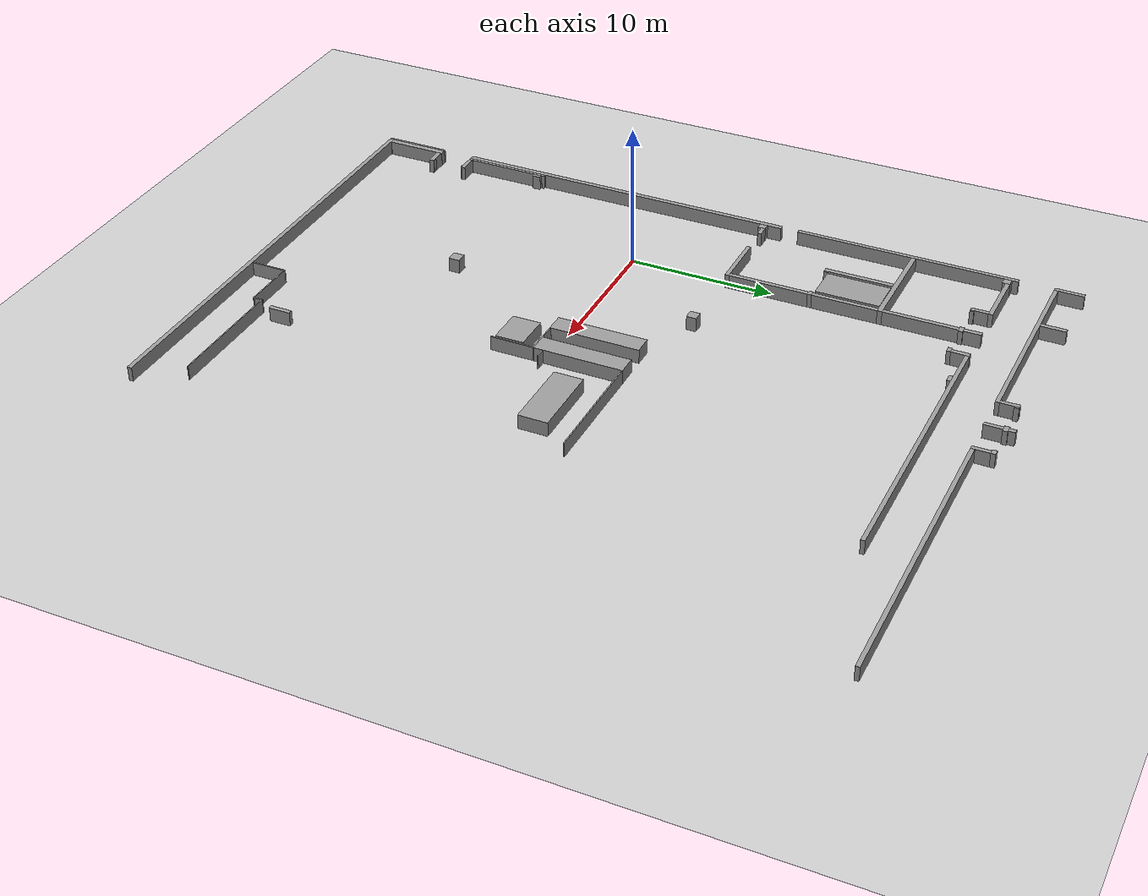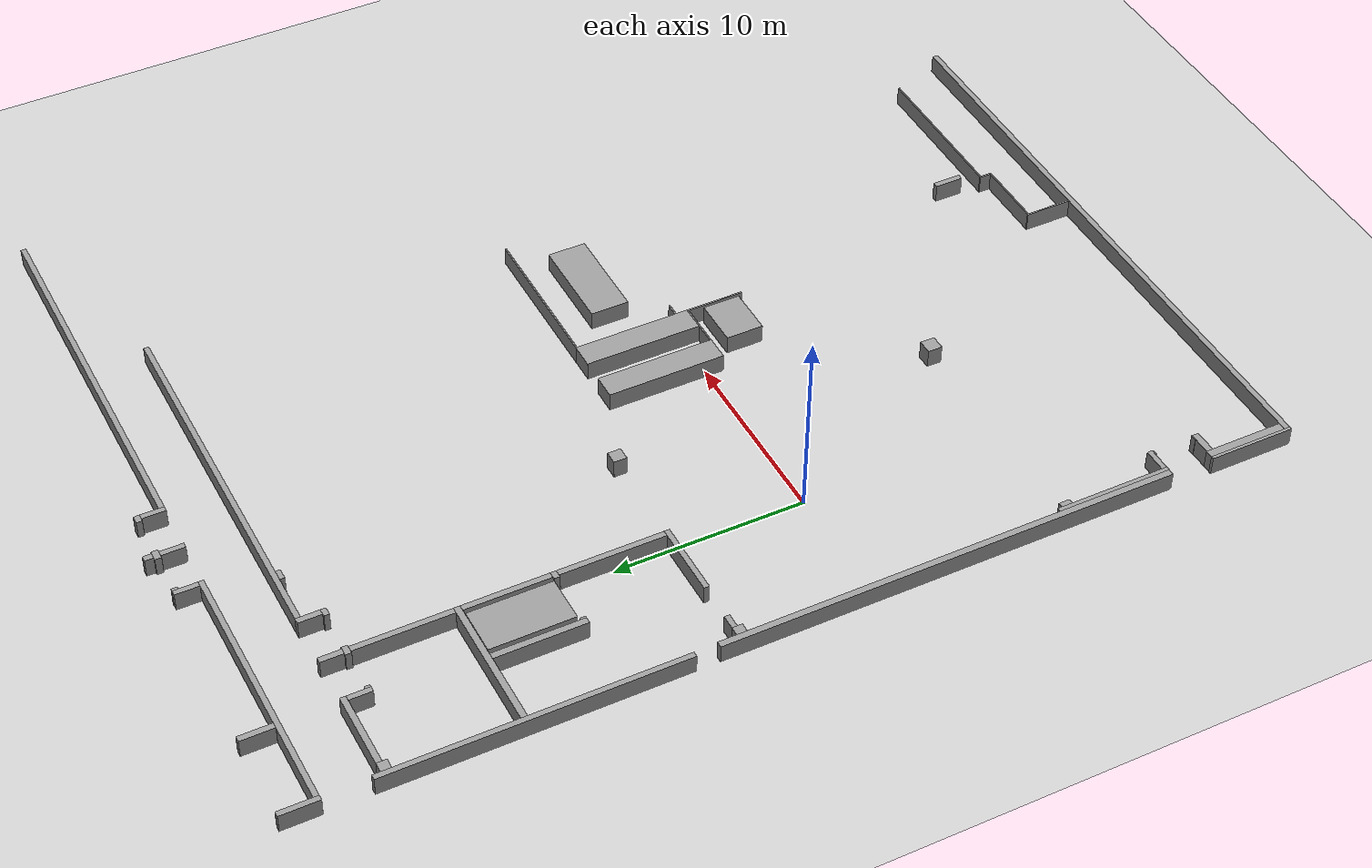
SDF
<sdf version="1.4">
 <world name="default">
  <model name="ground_plane">
   <static>1</static>
   <link name="link">
    <collision name="collision">
     <geometry><plane><normal>0 0 1</normal><size>100 100</size></plane></geometry>
     <surface><friction><ode><mu>100</mu><mu2>50</mu2></ode></friction></surface>
    </collision>
    <visual name="visual">
     <cast_shadows>0</cast_shadows>
     <geometry><plane><normal>0 0 1</normal><size>100 100</size></plane></geometry>
     <material>
      <script><uri>file://media/materials/scripts/gazebo.material</uri><name>Gazebo/Grey</name></script>
     </material>
    </visual>
    <velocity_decay><linear>0</linear><angular>0</angular></velocity_decay>
   </link>
  </model>
  <model name="walls">
   <static>1</static>
   <link name="Wall_0">
    <collision name="Wall_0_Collision">
     <geometry><box><size>4.51915 0.15319 1</size></box></geometry>
     <pose>2.28511 -0.0766 0.5 0 -0 0</pose>
    </collision>
    <visual name="Wall_0_Visual">
     <geometry><box><size>4.51915 0.15319 1</size></box></geometry>
     <material>
      <script><uri>file://media/materials/scripts/gazebo.material</uri><name>Gazebo/Grey</name></script>
     </material>
     <pose>2.28511 -0.0766 0.5 0 -0 0</pose>
    </visual>
    <velocity_decay><linear>0</linear><angular>0</angular></velocity_decay>
   </link>
   <link name="Wall_1">
    <collision name="Wall_1_Collision">
     <geometry><box><size>24.0766 0.33191 1</size></box></geometry>
     <pose>18.8553 -0.16596 0.5 0 -0 0</pose>
    </collision>
    <visual name="Wall_1_Visual">
     <geometry><box><size>24.0766 0.33191 1</size></box></geometry>
     <material>
      <script><uri>file://media/materials/scripts/gazebo.material</uri><name>Gazebo/Grey</name></script>
     </material>
     <pose>18.8553 -0.16596 0.5 0 -0 0</pose>
    </visual>
    <velocity_decay><linear>0</linear><angular>0</angular></velocity_decay>
   </link>
   <link name="Wall_2">
    <collision name="Wall_2_Collision">
     <geometry><box><size>15.4979 0.28085 1</size></box></geometry>
     <pose>39.8426 -0.14043 0.5 0 -0 0</pose>
    </collision>
    <visual name="Wall_2_Visual">
     <geometry><box><size>15.4979 0.28085 1</size></box></geometry>
     <material>
      <script><uri>file://media/materials/scripts/gazebo.material</uri><name>Gazebo/Grey</name></script>
     </material>
     <pose>39.8426 -0.14043 0.5 0 -0 0</pose>
    </visual>
    <velocity_decay><linear>0</linear><angular>0</angular></velocity_decay>
   </link>
   <link name="Wall_3">
    <collision name="Wall_3_Collision">
     <geometry><box><size>2.01702 0.28085 1</size></box></geometry>
     <pose>51 -0.14043 0.5 0 -0 0</pose>
    </collision>
    <visual name="Wall_3_Visual">
     <geometry><box><size>2.01702 0.28085 1</size></box></geometry>
     <material>
      <script><uri>file://media/materials/scripts/gazebo.material</uri><name>Gazebo/Grey</name></script>
     </material>
     <pose>51 -0.14043 0.5 0 -0 0</pose>
    </visual>
    <velocity_decay><linear>0</linear><angular>0</angular></velocity_decay>
   </link>
   <link name="Wall_4">
    <collision name="Wall_4_Collision">
     <geometry><box><size>0.30638 32.7319 1</size></box></geometry>
     <pose>0.17872 -16.5191 0.5 0 -0 0</pose>
    </collision>
    <visual name="Wall_4_Visual">
     <geometry><box><size>0.30638 32.7319 1</size></box></geometry>
     <material>
      <script><uri>file://media/materials/scripts/gazebo.material</uri><name>Gazebo/Grey</name></script>
     </material>
     <pose>0.17872 -16.5191 0.5 0 -0 0</pose>
    </visual>
    <velocity_decay><linear>0</linear><angular>0</angular></velocity_decay>
   </link>
   <link name="Wall_5">
    <collision name="Wall_5_Collision">
     <geometry><box><size>4.18723 0.40851 1</size></box></geometry>
     <pose>2.45106 -0.35745 0.5 0 -0 0</pose>
    </collision>
    <visual name="Wall_5_Visual">
     <geometry><box><size>4.18723 0.40851 1</size></box></geometry>
     <material>
      <script><uri>file://media/materials/scripts/gazebo.material</uri><name>Gazebo/Grey</name></script>
     </material>
     <pose>2.45106 -0.35745 0.5 0 -0 0</pose>
    </visual>
    <velocity_decay><linear>0</linear><angular>0</angular></velocity_decay>
   </link>
   <link name="Wall_6">
    <collision name="Wall_6_Collision">
     <geometry><box><size>0.02553 0.30638 1</size></box></geometry>
     <pose>0.34468 -0.40851 0.5 0 -0 0</pose>
    </collision>
    <visual name="Wall_6_Visual">
     <geometry><box><size>0.02553 0.30638 1</size></box></geometry>
     <material>
      <script><uri>file://media/materials/scripts/gazebo.material</uri><name>Gazebo/Grey</name></script>
     </material>
     <pose>0.34468 -0.40851 0.5 0 -0 0</pose>
    </visual>
    <velocity_decay><linear>0</linear><angular>0</angular></velocity_decay>
   </link>
   <link name="Wall_7">
    <collision name="Wall_7_Collision">
     <geometry><box><size>0.33191 7.17447 1</size></box></geometry>
     <pose>40.4043 -3.86809 0.5 0 -0 0</pose>
    </collision>
    <visual name="Wall_7_Visual">
     <geometry><box><size>0.33191 7.17447 1</size></box></geometry>
     <material>
      <script><uri>file://media/materials/scripts/gazebo.material</uri><name>Gazebo/Grey</name></script>
     </material>
     <pose>40.4043 -3.86809 0.5 0 -0 0</pose>
    </visual>
    <velocity_decay><linear>0</linear><angular>0</angular></velocity_decay>
   </link>
   <link name="Wall_8">
    <collision name="Wall_8_Collision">
     <geometry><box><size>0.53617 0.51064 1</size></box></geometry>
     <pose>46.9149 -0.53617 0.5 0 -0 0</pose>
    </collision>
    <visual name="Wall_8_Visual">
     <geometry><box><size>0.53617 0.51064 1</size></box></geometry>
     <material>
      <script><uri>file://media/materials/scripts/gazebo.material</uri><name>Gazebo/Grey</name></script>
     </material>
     <pose>46.9149 -0.53617 0.5 0 -0 0</pose>
    </visual>
    <velocity_decay><linear>0</linear><angular>0</angular></velocity_decay>
   </link>
   <link name="Wall_9">
    <collision name="Wall_9_Collision">
     <geometry><box><size>0.28085 13.8383 1</size></box></geometry>
     <pose>50.1319 -7.2 0.5 0 -0 0</pose>
    </collision>
    <visual name="Wall_9_Visual">
     <geometry><box><size>0.28085 13.8383 1</size></box></geometry>
     <material>
      <script><uri>file://media/materials/scripts/gazebo.material</uri><name>Gazebo/Grey</name></script>
     </material>
     <pose>50.1319 -7.2 0.5 0 -0 0</pose>
    </visual>
    <velocity_decay><linear>0</linear><angular>0</angular></velocity_decay>
   </link>
   <link name="Wall_10">
    <collision name="Wall_10_Collision">
     <geometry><box><size>6.0766 0.20426 1</size></box></geometry>
     <pose>9.85532 -0.43404 0.5 0 -0 0</pose>
    </collision>
    <visual name="Wall_10_Visual">
     <geometry><box><size>6.0766 0.20426 1</size></box></geometry>
     <material>
      <script><uri>file://media/materials/scripts/gazebo.material</uri><name>Gazebo/Grey</name></script>
     </material>
     <pose>9.85532 -0.43404 0.5 0 -0 0</pose>
    </visual>
    <velocity_decay><linear>0</linear><angular>0</angular></velocity_decay>
   </link>
   <link name="Wall_11">
    <collision name="Wall_11_Collision">
     <geometry><box><size>0.53617 0.45957 1</size></box></geometry>
     <pose>29.6553 -0.5617 0.5 0 -0 0</pose>
    </collision>
    <visual name="Wall_11_Visual">
     <geometry><box><size>0.53617 0.45957 1</size></box></geometry>
     <material>
      <script><uri>file://media/materials/scripts/gazebo.material</uri><name>Gazebo/Grey</name></script>
     </material>
     <pose>29.6553 -0.5617 0.5 0 -0 0</pose>
    </visual>
    <velocity_decay><linear>0</linear><angular>0</angular></velocity_decay>
   </link>
   <link name="Wall_12">
    <collision name="Wall_12_Collision">
     <geometry><box><size>0.28085 1.22553 1</size></box></geometry>
     <pose>6.95745 -1.14894 0.5 0 -0 0</pose>
    </collision>
    <visual name="Wall_12_Visual">
     <geometry><box><size>0.28085 1.22553 1</size></box></geometry>
     <material>
      <script><uri>file://media/materials/scripts/gazebo.material</uri><name>Gazebo/Grey</name></script>
     </material>
     <pose>6.95745 -1.14894 0.5 0 -0 0</pose>
    </visual>
    <velocity_decay><linear>0</linear><angular>0</angular></velocity_decay>
   </link>
   <link name="Wall_13">
    <collision name="Wall_13_Collision">
     <geometry><box><size>0.58723 0.25532 1</size></box></geometry>
     <pose>12.3702 -0.66383 0.5 0 -0 0</pose>
    </collision>
    <visual name="Wall_13_Visual">
     <geometry><box><size>0.58723 0.25532 1</size></box></geometry>
     <material>
      <script><uri>file://media/materials/scripts/gazebo.material</uri><name>Gazebo/Grey</name></script>
     </material>
     <pose>12.3702 -0.66383 0.5 0 -0 0</pose>
    </visual>
    <velocity_decay><linear>0</linear><angular>0</angular></velocity_decay>
   </link>
   <link name="Wall_14">
    <collision name="Wall_14_Collision">
     <geometry><box><size>0.35745 1.2 1</size></box></geometry>
     <pose>4.36596 -1.1617 0.5 0 -0 0</pose>
    </collision>
    <visual name="Wall_14_Visual">
     <geometry><box><size>0.35745 1.2 1</size></box></geometry>
     <material>
      <script><uri>file://media/materials/scripts/gazebo.material</uri><name>Gazebo/Grey</name></script>
     </material>
     <pose>4.36596 -1.1617 0.5 0 -0 0</pose>
    </visual>
    <velocity_decay><linear>0</linear><angular>0</angular></velocity_decay>
   </link>
   <link name="Wall_15">
    <collision name="Wall_15_Collision">
     <geometry><box><size>0.28085 0.74043 1</size></box></geometry>
     <pose>29.783 -1.1617 0.5 0 -0 0</pose>
    </collision>
    <visual name="Wall_15_Visual">
     <geometry><box><size>0.28085 0.74043 1</size></box></geometry>
     <material>
      <script><uri>file://media/materials/scripts/gazebo.material</uri><name>Gazebo/Grey</name></script>
     </material>
     <pose>29.783 -1.1617 0.5 0 -0 0</pose>
    </visual>
    <velocity_decay><linear>0</linear><angular>0</angular></velocity_decay>
   </link>
   <link name="Wall_16">
    <collision name="Wall_16_Collision">
     <geometry><box><size>0.30638 4.05957 1</size></box></geometry>
     <pose>47.0298 -2.82128 0.5 0 -0 0</pose>
    </collision>
    <visual name="Wall_16_Visual">
     <geometry><box><size>0.30638 4.05957 1</size></box></geometry>
     <material>
      <script><uri>file://media/materials/scripts/gazebo.material</uri><name>Gazebo/Grey</name></script>
     </material>
     <pose>47.0298 -2.82128 0.5 0 -0 0</pose>
    </visual>
    <velocity_decay><linear>0</linear><angular>0</angular></velocity_decay>
   </link>
   <link name="Wall_17">
    <collision name="Wall_17_Collision">
     <geometry><box><size>0.02553 0.30638 1</size></box></geometry>
     <pose>4.55745 -1.60851 0.5 0 -0 0</pose>
    </collision>
    <visual name="Wall_17_Visual">
     <geometry><box><size>0.02553 0.30638 1</size></box></geometry>
     <material>
      <script><uri>file://media/materials/scripts/gazebo.material</uri><name>Gazebo/Grey</name></script>
     </material>
     <pose>4.55745 -1.60851 0.5 0 -0 0</pose>
    </visual>
    <velocity_decay><linear>0</linear><angular>0</angular></velocity_decay>
   </link>
   <link name="Wall_18">
    <collision name="Wall_18_Collision">
     <geometry><box><size>0.05106 0.28085 1</size></box></geometry>
     <pose>6.79149 -1.62128 0.5 0 -0 0</pose>
    </collision>
    <visual name="Wall_18_Visual">
     <geometry><box><size>0.05106 0.28085 1</size></box></geometry>
     <material>
      <script><uri>file://media/materials/scripts/gazebo.material</uri><name>Gazebo/Grey</name></script>
     </material>
     <pose>6.79149 -1.62128 0.5 0 -0 0</pose>
    </visual>
    <velocity_decay><linear>0</linear><angular>0</angular></velocity_decay>
   </link>
   <link name="Wall_19">
    <collision name="Wall_19_Collision">
     <geometry><box><size>0.28085 3.98298 1</size></box></geometry>
     <pose>29.783 -5.46383 0.5 0 -0 0</pose>
    </collision>
    <visual name="Wall_19_Visual">
     <geometry><box><size>0.28085 3.98298 1</size></box></geometry>
     <material>
      <script><uri>file://media/materials/scripts/gazebo.material</uri><name>Gazebo/Grey</name></script>
     </material>
     <pose>29.783 -5.46383 0.5 0 -0 0</pose>
    </visual>
    <velocity_decay><linear>0</linear><angular>0</angular></velocity_decay>
   </link>
   <link name="Wall_20">
    <collision name="Wall_20_Collision">
     <geometry><box><size>4.77447 0.33191 1</size></box></geometry>
     <pose>37.8511 -4.09787 0.5 0 -0 0</pose>
    </collision>
    <visual name="Wall_20_Visual">
     <geometry><box><size>4.77447 0.33191 1</size></box></geometry>
     <material>
      <script><uri>file://media/materials/scripts/gazebo.material</uri><name>Gazebo/Grey</name></script>
     </material>
     <pose>37.8511 -4.09787 0.5 0 -0 0</pose>
    </visual>
    <velocity_decay><linear>0</linear><angular>0</angular></velocity_decay>
   </link>
   <link name="Wall_21">
    <collision name="Wall_21_Collision">
     <geometry><box><size>0.28085 0.10213 1</size></box></geometry>
     <pose>35.6043 -4.31489 0.5 0 -0 0</pose>
    </collision>
    <visual name="Wall_21_Visual">
     <geometry><box><size>0.28085 0.10213 1</size></box></geometry>
     <material>
      <script><uri>file://media/materials/scripts/gazebo.material</uri><name>Gazebo/Grey</name></script>
     </material>
     <pose>35.6043 -4.31489 0.5 0 -0 0</pose>
    </visual>
    <velocity_decay><linear>0</linear><angular>0</angular></velocity_decay>
   </link>
   <link name="Wall_22">
    <collision name="Wall_22_Collision">
     <geometry><box><size>4.41702 2.42553 1</size></box></geometry>
     <pose>38.0043 -5.70638 0.5 0 -0 0</pose>
    </collision>
    <visual name="Wall_22_Visual">
     <geometry><box><size>4.41702 2.42553 1</size></box></geometry>
     <material>
      <script><uri>file://media/materials/scripts/gazebo.material</uri><name>Gazebo/Grey</name></script>
     </material>
     <pose>38.0043 -5.70638 0.5 0 -0 0</pose>
    </visual>
    <velocity_decay><linear>0</linear><angular>0</angular></velocity_decay>
   </link>
   <link name="Wall_23">
    <collision name="Wall_23_Collision">
     <geometry><box><size>1.73617 0.30638 1</size></box></geometry>
     <pose>51.1404 -4.69787 0.5 0 -0 0</pose>
    </collision>
    <visual name="Wall_23_Visual">
     <geometry><box><size>1.73617 0.30638 1</size></box></geometry>
     <material>
      <script><uri>file://media/materials/scripts/gazebo.material</uri><name>Gazebo/Grey</name></script>
     </material>
     <pose>51.1404 -4.69787 0.5 0 -0 0</pose>
    </visual>
    <velocity_decay><linear>0</linear><angular>0</angular></velocity_decay>
   </link>
   <link name="Wall_24">
    <collision name="Wall_24_Collision">
     <geometry><box><size>1.2 0.28085 1</size></box></geometry>
     <pose>46.2766 -4.71064 0.5 0 -0 0</pose>
    </collision>
    <visual name="Wall_24_Visual">
     <geometry><box><size>1.2 0.28085 1</size></box></geometry>
     <material>
      <script><uri>file://media/materials/scripts/gazebo.material</uri><name>Gazebo/Grey</name></script>
     </material>
     <pose>46.2766 -4.71064 0.5 0 -0 0</pose>
    </visual>
    <velocity_decay><linear>0</linear><angular>0</angular></velocity_decay>
   </link>
   <link name="Wall_25">
    <collision name="Wall_25_Collision">
     <geometry><box><size>0.28085 0.12766 1</size></box></geometry>
     <pose>45.817 -4.91489 0.5 0 -0 0</pose>
    </collision>
    <visual name="Wall_25_Visual">
     <geometry><box><size>0.28085 0.12766 1</size></box></geometry>
     <material>
      <script><uri>file://media/materials/scripts/gazebo.material</uri><name>Gazebo/Grey</name></script>
     </material>
     <pose>45.817 -4.91489 0.5 0 -0 0</pose>
    </visual>
    <velocity_decay><linear>0</linear><angular>0</angular></velocity_decay>
   </link>
   <link name="Wall_26">
    <collision name="Wall_26_Collision">
     <geometry><box><size>0.30638 0.40851 1</size></box></geometry>
     <pose>35.5915 -7.25106 0.5 0 -0 0</pose>
    </collision>
    <visual name="Wall_26_Visual">
     <geometry><box><size>0.30638 0.40851 1</size></box></geometry>
     <material>
      <script><uri>file://media/materials/scripts/gazebo.material</uri><name>Gazebo/Grey</name></script>
     </material>
     <pose>35.5915 -7.25106 0.5 0 -0 0</pose>
    </visual>
    <velocity_decay><linear>0</linear><angular>0</angular></velocity_decay>
   </link>
   <link name="Wall_27">
    <collision name="Wall_27_Collision">
     <geometry><box><size>0.30638 0.51064 1</size></box></geometry>
     <pose>45.8298 -7.30213 0.5 0 -0 0</pose>
    </collision>
    <visual name="Wall_27_Visual">
     <geometry><box><size>0.30638 0.51064 1</size></box></geometry>
     <material>
      <script><uri>file://media/materials/scripts/gazebo.material</uri><name>Gazebo/Grey</name></script>
     </material>
     <pose>45.8298 -7.30213 0.5 0 -0 0</pose>
    </visual>
    <velocity_decay><linear>0</linear><angular>0</angular></velocity_decay>
   </link>
   <link name="Wall_28">
    <collision name="Wall_28_Collision">
     <geometry><box><size>5.51489 0.30638 1</size></box></geometry>
     <pose>32.6808 -7.30213 0.5 0 -0 0</pose>
    </collision>
    <visual name="Wall_28_Visual">
     <geometry><box><size>5.51489 0.30638 1</size></box></geometry>
     <material>
      <script><uri>file://media/materials/scripts/gazebo.material</uri><name>Gazebo/Grey</name></script>
     </material>
     <pose>32.6808 -7.30213 0.5 0 -0 0</pose>
    </visual>
    <velocity_decay><linear>0</linear><angular>0</angular></velocity_decay>
   </link>
   <link name="Wall_29">
    <collision name="Wall_29_Collision">
     <geometry><box><size>4.49362 0.30638 1</size></box></geometry>
     <pose>37.9915 -7.30213 0.5 0 -0 0</pose>
    </collision>
    <visual name="Wall_29_Visual">
     <geometry><box><size>4.49362 0.30638 1</size></box></geometry>
     <material>
      <script><uri>file://media/materials/scripts/gazebo.material</uri><name>Gazebo/Grey</name></script>
     </material>
     <pose>37.9915 -7.30213 0.5 0 -0 0</pose>
    </visual>
    <velocity_decay><linear>0</linear><angular>0</angular></velocity_decay>
   </link>
   <link name="Wall_30">
    <collision name="Wall_30_Collision">
     <geometry><box><size>5.10638 0.30638 1</size></box></geometry>
     <pose>43.1234 -7.30213 0.5 0 -0 0</pose>
    </collision>
    <visual name="Wall_30_Visual">
     <geometry><box><size>5.10638 0.30638 1</size></box></geometry>
     <material>
      <script><uri>file://media/materials/scripts/gazebo.material</uri><name>Gazebo/Grey</name></script>
     </material>
     <pose>43.1234 -7.30213 0.5 0 -0 0</pose>
    </visual>
    <velocity_decay><linear>0</linear><angular>0</angular></velocity_decay>
   </link>
   <link name="Wall_31">
    <collision name="Wall_31_Collision">
     <geometry><box><size>1.2 0.30638 1</size></box></geometry>
     <pose>46.583 -7.30213 0.5 0 -0 0</pose>
    </collision>
    <visual name="Wall_31_Visual">
     <geometry><box><size>1.2 0.30638 1</size></box></geometry>
     <material>
      <script><uri>file://media/materials/scripts/gazebo.material</uri><name>Gazebo/Grey</name></script>
     </material>
     <pose>46.583 -7.30213 0.5 0 -0 0</pose>
    </visual>
    <velocity_decay><linear>0</linear><angular>0</angular></velocity_decay>
   </link>
   <link name="Wall_32">
    <collision name="Wall_32_Collision">
     <geometry><box><size>0.28085 0.43404 1</size></box></geometry>
     <pose>45.817 -9.84255 0.5 0 -0 0</pose>
    </collision>
    <visual name="Wall_32_Visual">
     <geometry><box><size>0.28085 0.43404 1</size></box></geometry>
     <material>
      <script><uri>file://media/materials/scripts/gazebo.material</uri><name>Gazebo/Grey</name></script>
     </material>
     <pose>45.817 -9.84255 0.5 0 -0 0</pose>
    </visual>
    <velocity_decay><linear>0</linear><angular>0</angular></velocity_decay>
   </link>
   <link name="Wall_33">
    <collision name="Wall_33_Collision">
     <geometry><box><size>1.22553 0.30638 1</size></box></geometry>
     <pose>46.5702 -9.90638 0.5 0 -0 0</pose>
    </collision>
    <visual name="Wall_33_Visual">
     <geometry><box><size>1.22553 0.30638 1</size></box></geometry>
     <material>
      <script><uri>file://media/materials/scripts/gazebo.material</uri><name>Gazebo/Grey</name></script>
     </material>
     <pose>46.5702 -9.90638 0.5 0 -0 0</pose>
    </visual>
    <velocity_decay><linear>0</linear><angular>0</angular></velocity_decay>
   </link>
   <link name="Wall_34">
    <collision name="Wall_34_Collision">
     <geometry><box><size>0.28085 19.9404 1</size></box></geometry>
     <pose>47.0425 -20.0298 0.5 0 -0 0</pose>
    </collision>
    <visual name="Wall_34_Visual">
     <geometry><box><size>0.28085 19.9404 1</size></box></geometry>
     <material>
      <script><uri>file://media/materials/scripts/gazebo.material</uri><name>Gazebo/Grey</name></script>
     </material>
     <pose>47.0425 -20.0298 0.5 0 -0 0</pose>
    </visual>
    <velocity_decay><linear>0</linear><angular>0</angular></velocity_decay>
   </link>
   <link name="Wall_35">
    <collision name="Wall_35_Collision">
     <geometry><box><size>0.76596 0.76596 1</size></box></geometry>
     <pose>12.383 -12.8425 0.5 0 -0 0</pose>
    </collision>
    <visual name="Wall_35_Visual">
     <geometry><box><size>0.76596 0.76596 1</size></box></geometry>
     <material>
      <script><uri>file://media/materials/scripts/gazebo.material</uri><name>Gazebo/Grey</name></script>
     </material>
     <pose>12.383 -12.8425 0.5 0 -0 0</pose>
    </visual>
    <velocity_decay><linear>0</linear><angular>0</angular></velocity_decay>
   </link>
   <link name="Wall_36">
    <collision name="Wall_36_Collision">
     <geometry><box><size>0.68936 0.68936 1</size></box></geometry>
     <pose>29.6553 -12.8553 0.5 0 -0 0</pose>
    </collision>
    <visual name="Wall_36_Visual">
     <geometry><box><size>0.68936 0.68936 1</size></box></geometry>
     <material>
      <script><uri>file://media/materials/scripts/gazebo.material</uri><name>Gazebo/Grey</name></script>
     </material>
     <pose>29.6553 -12.8553 0.5 0 -0 0</pose>
    </visual>
    <velocity_decay><linear>0</linear><angular>0</angular></velocity_decay>
   </link>
   <link name="Wall_37">
    <collision name="Wall_37_Collision">
     <geometry><box><size>0.25532 0.5617 1</size></box></geometry>
     <pose>46.7745 -12.8681 0.5 0 -0 0</pose>
    </collision>
    <visual name="Wall_37_Visual">
     <geometry><box><size>0.25532 0.5617 1</size></box></geometry>
     <material>
      <script><uri>file://media/materials/scripts/gazebo.material</uri><name>Gazebo/Grey</name></script>
     </material>
     <pose>46.7745 -12.8681 0.5 0 -0 0</pose>
    </visual>
    <velocity_decay><linear>0</linear><angular>0</angular></velocity_decay>
   </link>
   <link name="Wall_38">
    <collision name="Wall_38_Collision">
     <geometry><box><size>1.25106 0.28085 1</size></box></geometry>
     <pose>50.8979 -13.9787 0.5 0 -0 0</pose>
    </collision>
    <visual name="Wall_38_Visual">
     <geometry><box><size>1.25106 0.28085 1</size></box></geometry>
     <material>
      <script><uri>file://media/materials/scripts/gazebo.material</uri><name>Gazebo/Grey</name></script>
     </material>
     <pose>50.8979 -13.9787 0.5 0 -0 0</pose>
    </visual>
    <velocity_decay><linear>0</linear><angular>0</angular></velocity_decay>
   </link>
   <link name="Wall_39">
    <collision name="Wall_39_Collision">
     <geometry><box><size>0.33191 0.12766 1</size></box></geometry>
     <pose>51.3575 -14.183 0.5 0 -0 0</pose>
    </collision>
    <visual name="Wall_39_Visual">
     <geometry><box><size>0.33191 0.12766 1</size></box></geometry>
     <material>
      <script><uri>file://media/materials/scripts/gazebo.material</uri><name>Gazebo/Grey</name></script>
     </material>
     <pose>51.3575 -14.183 0.5 0 -0 0</pose>
    </visual>
    <velocity_decay><linear>0</linear><angular>0</angular></velocity_decay>
   </link>
   <link name="Wall_40">
    <collision name="Wall_40_Collision">
     <geometry><box><size>0.33191 0.53617 1</size></box></geometry>
     <pose>51.383 -16.5574 0.5 0 -0 0</pose>
    </collision>
    <visual name="Wall_40_Visual">
     <geometry><box><size>0.33191 0.53617 1</size></box></geometry>
     <material>
      <script><uri>file://media/materials/scripts/gazebo.material</uri><name>Gazebo/Grey</name></script>
     </material>
     <pose>51.383 -16.5574 0.5 0 -0 0</pose>
    </visual>
    <velocity_decay><linear>0</linear><angular>0</angular></velocity_decay>
   </link>
   <link name="Wall_41">
    <collision name="Wall_41_Collision">
     <geometry><box><size>1.22553 0.28085 1</size></box></geometry>
     <pose>50.6043 -16.5574 0.5 0 -0 0</pose>
    </collision>
    <visual name="Wall_41_Visual">
     <geometry><box><size>1.22553 0.28085 1</size></box></geometry>
     <material>
      <script><uri>file://media/materials/scripts/gazebo.material</uri><name>Gazebo/Grey</name></script>
     </material>
     <pose>50.6043 -16.5574 0.5 0 -0 0</pose>
    </visual>
    <velocity_decay><linear>0</linear><angular>0</angular></velocity_decay>
   </link>
   <link name="Wall_42">
    <collision name="Wall_42_Collision">
     <geometry><box><size>0.45957 0.30638 1</size></box></geometry>
     <pose>51.7787 -16.5702 0.5 0 -0 0</pose>
    </collision>
    <visual name="Wall_42_Visual">
     <geometry><box><size>0.45957 0.30638 1</size></box></geometry>
     <material>
      <script><uri>file://media/materials/scripts/gazebo.material</uri><name>Gazebo/Grey</name></script>
     </material>
     <pose>51.7787 -16.5702 0.5 0 -0 0</pose>
    </visual>
    <velocity_decay><linear>0</linear><angular>0</angular></velocity_decay>
   </link>
   <link name="Wall_43">
    <collision name="Wall_43_Collision">
     <geometry><box><size>6.22979 1.30213 1</size></box></geometry>
     <pose>25.0213 -17.3745 0.5 0 -0 0</pose>
    </collision>
    <visual name="Wall_43_Visual">
     <geometry><box><size>6.22979 1.30213 1</size></box></geometry>
     <material>
      <script><uri>file://media/materials/scripts/gazebo.material</uri><name>Gazebo/Grey</name></script>
     </material>
     <pose>25.0213 -17.3745 0.5 0 -0 0</pose>
    </visual>
    <velocity_decay><linear>0</linear><angular>0</angular></velocity_decay>
   </link>
   <link name="Wall_44">
    <collision name="Wall_44_Collision">
     <geometry><box><size>1.96596 2.50213 1</size></box></geometry>
     <pose>20.1575 -19.0213 0.5 0 -0 0</pose>
    </collision>
    <visual name="Wall_44_Visual">
     <geometry><box><size>1.96596 2.50213 1</size></box></geometry>
     <material>
      <script><uri>file://media/materials/scripts/gazebo.material</uri><name>Gazebo/Grey</name></script>
     </material>
     <pose>20.1575 -19.0213 0.5 0 -0 0</pose>
    </visual>
    <velocity_decay><linear>0</linear><angular>0</angular></velocity_decay>
   </link>
   <link name="Wall_45">
    <collision name="Wall_45_Collision">
     <geometry><box><size>0.0766 2.4766 1</size></box></geometry>
     <pose>21.9447 -19.2638 0.5 0 -0 0</pose>
    </collision>
    <visual name="Wall_45_Visual">
     <geometry><box><size>0.0766 2.4766 1</size></box></geometry>
     <material>
      <script><uri>file://media/materials/scripts/gazebo.material</uri><name>Gazebo/Grey</name></script>
     </material>
     <pose>21.9447 -19.2638 0.5 0 -0 0</pose>
    </visual>
    <velocity_decay><linear>0</linear><angular>0</angular></velocity_decay>
   </link>
   <link name="Wall_46">
    <collision name="Wall_46_Collision">
     <geometry><box><size>0.30638 0.40851 1</size></box></geometry>
     <pose>51.3702 -19.0979 0.5 0 -0 0</pose>
    </collision>
    <visual name="Wall_46_Visual">
     <geometry><box><size>0.30638 0.40851 1</size></box></geometry>
     <material>
      <script><uri>file://media/materials/scripts/gazebo.material</uri><name>Gazebo/Grey</name></script>
     </material>
     <pose>51.3702 -19.0979 0.5 0 -0 0</pose>
    </visual>
    <velocity_decay><linear>0</linear><angular>0</angular></velocity_decay>
   </link>
   <link name="Wall_47">
    <collision name="Wall_47_Collision">
     <geometry><box><size>1.22553 0.28085 1</size></box></geometry>
     <pose>50.6043 -19.1617 0.5 0 -0 0</pose>
    </collision>
    <visual name="Wall_47_Visual">
     <geometry><box><size>1.22553 0.28085 1</size></box></geometry>
     <material>
      <script><uri>file://media/materials/scripts/gazebo.material</uri><name>Gazebo/Grey</name></script>
     </material>
     <pose>50.6043 -19.1617 0.5 0 -0 0</pose>
    </visual>
    <velocity_decay><linear>0</linear><angular>0</angular></velocity_decay>
   </link>
   <link name="Wall_48">
    <collision name="Wall_48_Collision">
     <geometry><box><size>2.50213 0.0766 1</size></box></geometry>
     <pose>1.58298 -19.1362 0.5 0 -0 0</pose>
    </collision>
    <visual name="Wall_48_Visual">
     <geometry><box><size>2.50213 0.0766 1</size></box></geometry>
     <material>
      <script><uri>file://media/materials/scripts/gazebo.material</uri><name>Gazebo/Grey</name></script>
     </material>
     <pose>1.58298 -19.1362 0.5 0 -0 0</pose>
    </visual>
    <velocity_decay><linear>0</linear><angular>0</angular></velocity_decay>
   </link>
   <link name="Wall_49">
    <collision name="Wall_49_Collision">
     <geometry><box><size>0.0766 3.70213 1</size></box></geometry>
     <pose>2.79574 -21.0255 0.5 0 -0 0</pose>
    </collision>
    <visual name="Wall_49_Visual">
     <geometry><box><size>0.0766 3.70213 1</size></box></geometry>
     <material>
      <script><uri>file://media/materials/scripts/gazebo.material</uri><name>Gazebo/Grey</name></script>
     </material>
     <pose>2.79574 -21.0255 0.5 0 -0 0</pose>
    </visual>
    <velocity_decay><linear>0</linear><angular>0</angular></velocity_decay>
   </link>
   <link name="Wall_50">
    <collision name="Wall_50_Collision">
     <geometry><box><size>6.15319 1.32766 1</size></box></geometry>
     <pose>25.0596 -19.8383 0.5 0 -0 0</pose>
    </collision>
    <visual name="Wall_50_Visual">
     <geometry><box><size>6.15319 1.32766 1</size></box></geometry>
     <material>
      <script><uri>file://media/materials/scripts/gazebo.material</uri><name>Gazebo/Grey</name></script>
     </material>
     <pose>25.0596 -19.8383 0.5 0 -0 0</pose>
    </visual>
    <velocity_decay><linear>0</linear><angular>0</angular></velocity_decay>
   </link>
   <link name="Wall_51">
    <collision name="Wall_51_Collision">
     <geometry><box><size>0.28085 20.4766 1</size></box></geometry>
     <pose>50.1319 -29.5404 0.5 0 -0 0</pose>
    </collision>
    <visual name="Wall_51_Visual">
     <geometry><box><size>0.28085 20.4766 1</size></box></geometry>
     <material>
      <script><uri>file://media/materials/scripts/gazebo.material</uri><name>Gazebo/Grey</name></script>
     </material>
     <pose>50.1319 -29.5404 0.5 0 -0 0</pose>
    </visual>
    <velocity_decay><linear>0</linear><angular>0</angular></velocity_decay>
   </link>
   <link name="Wall_52">
    <collision name="Wall_52_Collision">
     <geometry><box><size>2.98723 0.0766 1</size></box></geometry>
     <pose>20.4128 -20.4638 0.5 0 -0 0</pose>
    </collision>
    <visual name="Wall_52_Visual">
     <geometry><box><size>2.98723 0.0766 1</size></box></geometry>
     <material>
      <script><uri>file://media/materials/scripts/gazebo.material</uri><name>Gazebo/Grey</name></script>
     </material>
     <pose>20.4128 -20.4638 0.5 0 -0 0</pose>
    </visual>
    <velocity_decay><linear>0</linear><angular>0</angular></velocity_decay>
   </link>
   <link name="Wall_53">
    <collision name="Wall_53_Collision">
     <geometry><box><size>0.0766 0.68936 1</size></box></geometry>
     <pose>22.6085 -20.8468 0.5 0 -0 0</pose>
    </collision>
    <visual name="Wall_53_Visual">
     <geometry><box><size>0.0766 0.68936 1</size></box></geometry>
     <material>
      <script><uri>file://media/materials/scripts/gazebo.material</uri><name>Gazebo/Grey</name></script>
     </material>
     <pose>22.6085 -20.8468 0.5 0 -0 0</pose>
    </visual>
    <velocity_decay><linear>0</linear><angular>0</angular></velocity_decay>
   </link>
   <link name="Wall_54">
    <collision name="Wall_54_Collision">
     <geometry><box><size>0.0766 8.29787 1</size></box></geometry>
     <pose>28.0979 -24.6511 0.5 0 -0 0</pose>
    </collision>
    <visual name="Wall_54_Visual">
     <geometry><box><size>0.0766 8.29787 1</size></box></geometry>
     <material>
      <script><uri>file://media/materials/scripts/gazebo.material</uri><name>Gazebo/Grey</name></script>
     </material>
     <pose>28.0979 -24.6511 0.5 0 -0 0</pose>
    </visual>
    <velocity_decay><linear>0</linear><angular>0</angular></velocity_decay>
   </link>
   <link name="Wall_55">
    <collision name="Wall_55_Collision">
     <geometry><box><size>2.01702 5.00426 1</size></box></geometry>
     <pose>25.3404 -24.8681 0.5 0 -0 0</pose>
    </collision>
    <visual name="Wall_55_Visual">
     <geometry><box><size>2.01702 5.00426 1</size></box></geometry>
     <material>
      <script><uri>file://media/materials/scripts/gazebo.material</uri><name>Gazebo/Grey</name></script>
     </material>
     <pose>25.3404 -24.8681 0.5 0 -0 0</pose>
    </visual>
    <velocity_decay><linear>0</linear><angular>0</angular></velocity_decay>
   </link>
   <link name="Wall_56">
    <collision name="Wall_56_Collision">
     <geometry><box><size>0.61277 0.0766 1</size></box></geometry>
     <pose>3.14043 -22.8383 0.5 0 -0 0</pose>
    </collision>
    <visual name="Wall_56_Visual">
     <geometry><box><size>0.61277 0.0766 1</size></box></geometry>
     <material>
      <script><uri>file://media/materials/scripts/gazebo.material</uri><name>Gazebo/Grey</name></script>
     </material>
     <pose>3.14043 -22.8383 0.5 0 -0 0</pose>
    </visual>
    <velocity_decay><linear>0</linear><angular>0</angular></velocity_decay>
   </link>
   <link name="Wall_57">
    <collision name="Wall_57_Collision">
     <geometry><box><size>0.0766 8.42553 1</size></box></geometry>
     <pose>3.40851 -27.0894 0.5 0 -0 0</pose>
    </collision>
    <visual name="Wall_57_Visual">
     <geometry><box><size>0.0766 8.42553 1</size></box></geometry>
     <material>
      <script><uri>file://media/materials/scripts/gazebo.material</uri><name>Gazebo/Grey</name></script>
     </material>
     <pose>3.40851 -27.0894 0.5 0 -0 0</pose>
    </visual>
    <velocity_decay><linear>0</linear><angular>0</angular></velocity_decay>
   </link>
   <link name="Wall_58">
    <collision name="Wall_58_Collision">
     <geometry><box><size>1.50638 0.30638 1</size></box></geometry>
     <pose>5.11915 -23.3362 0.5 0 -0 0</pose>
    </collision>
    <visual name="Wall_58_Visual">
     <geometry><box><size>1.50638 0.30638 1</size></box></geometry>
     <material>
      <script><uri>file://media/materials/scripts/gazebo.material</uri><name>Gazebo/Grey</name></script>
     </material>
     <pose>5.11915 -23.3362 0.5 0 -0 0</pose>
    </visual>
    <velocity_decay><linear>0</linear><angular>0</angular></velocity_decay>
   </link>
   <pose>-7 -22.75 0 0 -0 1.5708</pose>
  </model>
 </world>
</sdf>
